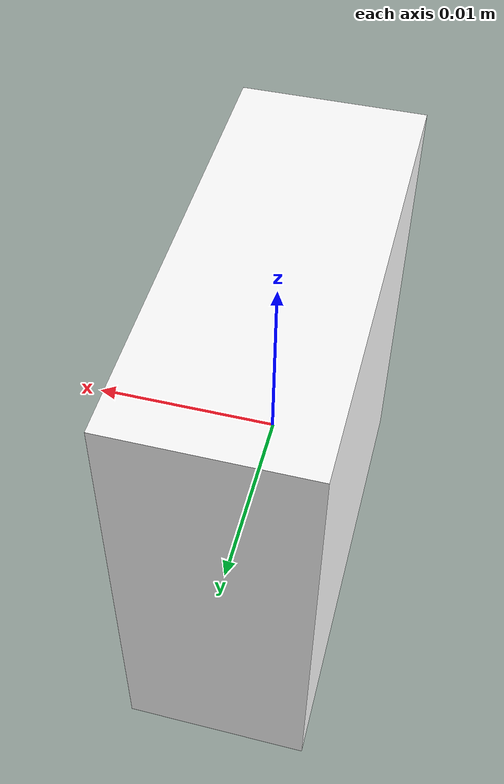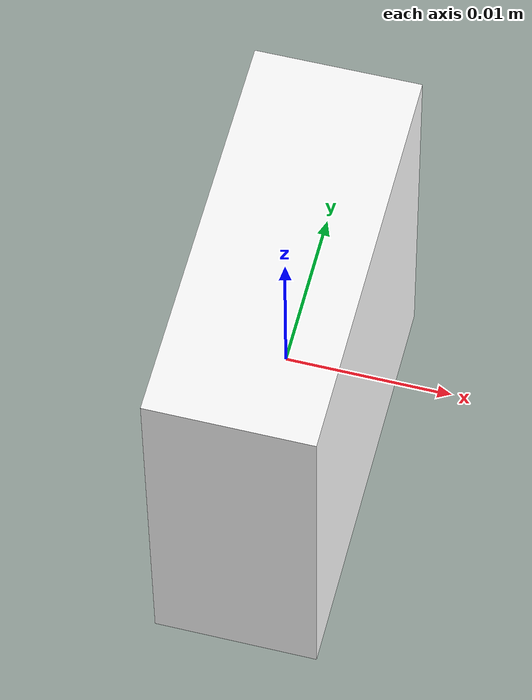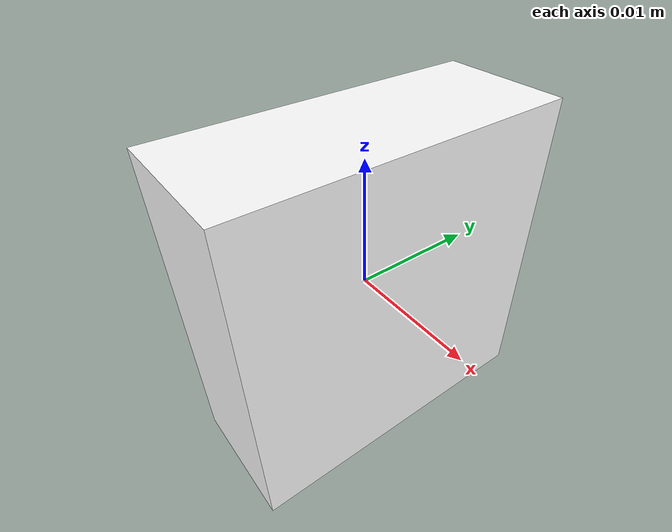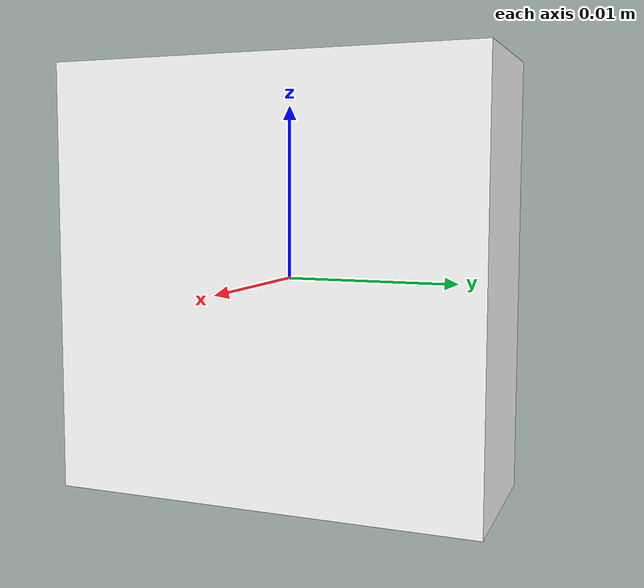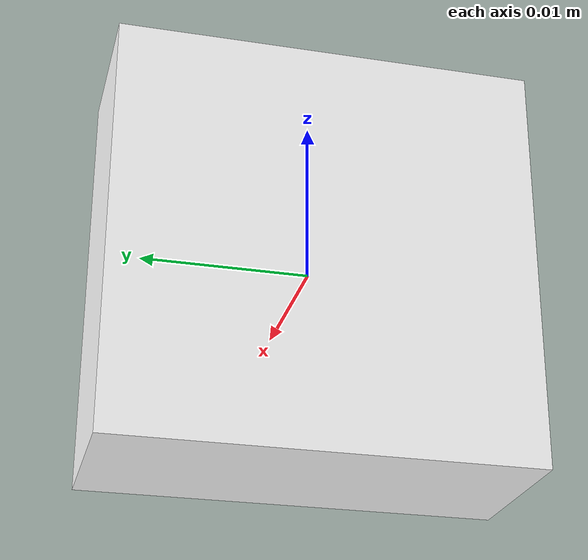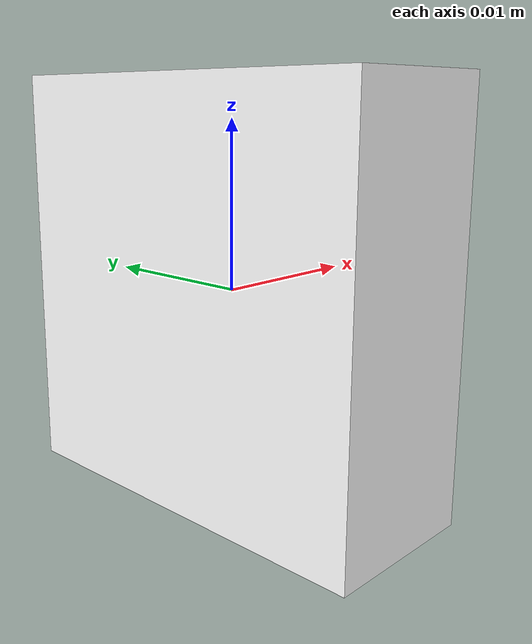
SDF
<?xml version='1.0'?>
<sdf version='1.7'>
  <model name='Apriltag36_11_00000_mod_new2'>
    <link name='main'>
      <pose>0 0 0 3.14159 -1.57079 3.14159</pose>
      <self_collide>0</self_collide>
      <enable_wind>0</enable_wind>
      <kinematic>0</kinematic>
      <gravity>1</gravity>
      <inertial>
        <mass>1</mass>
        <pose>0 0 0 0 -0 0</pose>
        <inertia>
          <ixx>1</ixx>
          <ixy>0</ixy>
          <ixz>0</ixz>
          <iyy>1</iyy>
          <iyz>0</iyz>
          <izz>1</izz>
        </inertia>
      </inertial>
      <visual name='main_Visual'>
        <geometry>
          <box>
            <size>0.025 0.025 0.01</size>
          </box>
        </geometry>
        <material>
          <script>
            <uri>model://Apriltag36_11_00000/materials/scripts</uri>
            <uri>model://Apriltag36_11_00000/materials/textures</uri>
            <name>Apriltag36_11_00000</name>
          </script>
          <shader type='pixel'>
            <normal_map>__default__</normal_map>
          </shader>
          <ambient>1 1 1 1</ambient>
          <diffuse>1 1 1 1</diffuse>
          <specular>0 0 0 1</specular>
          <emissive>0 0 0 1</emissive>
        </material>
        <pose>0 0 0 0 -0 0</pose>
        <transparency>0</transparency>
        <cast_shadows>1</cast_shadows>
      </visual>
    </link>
    <static>1</static>
    <allow_auto_disable>1</allow_auto_disable>
  </model>
</sdf>
